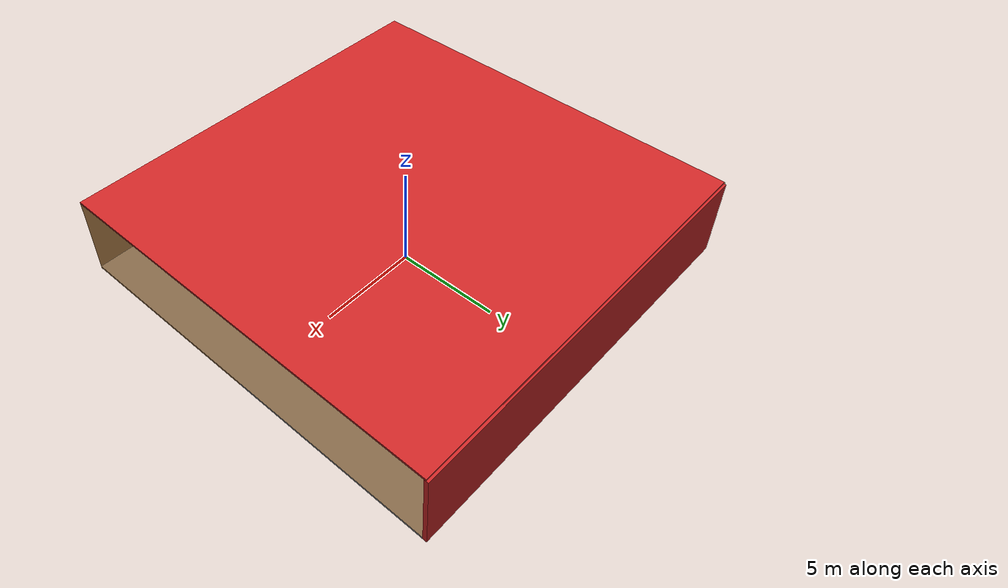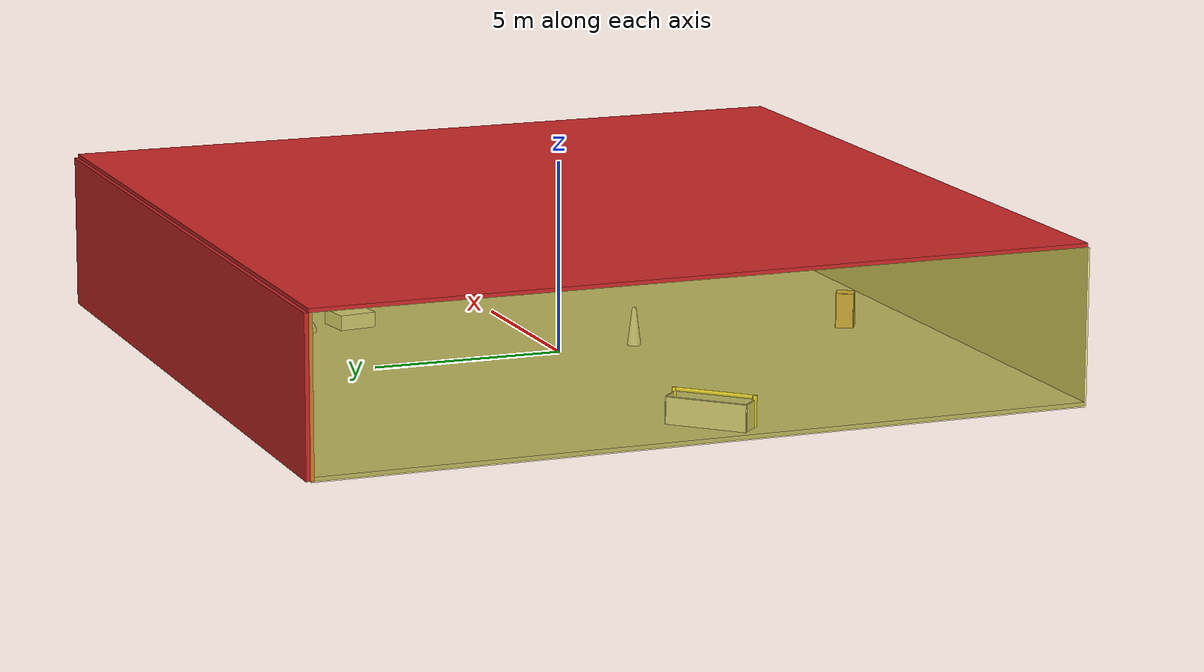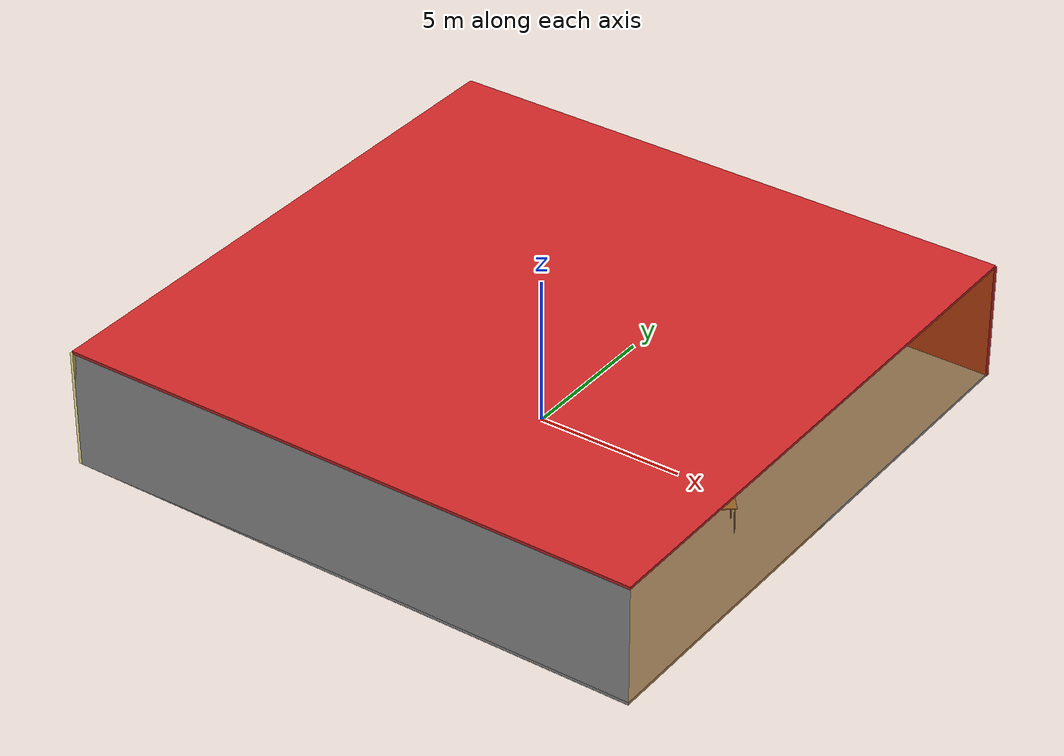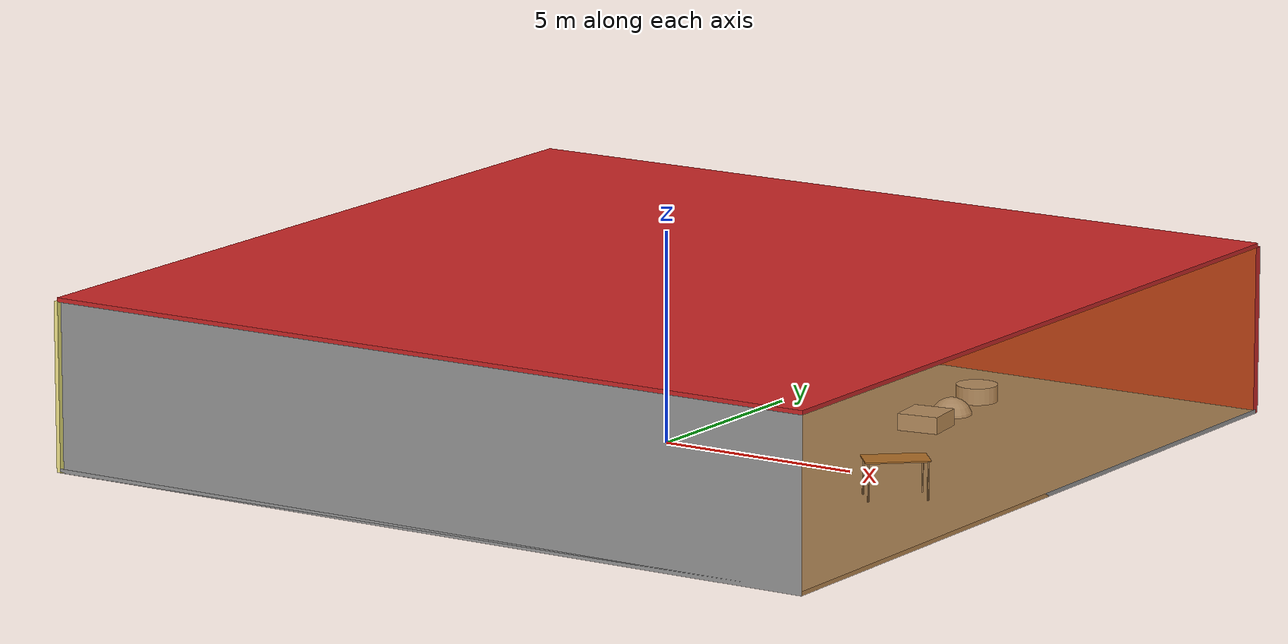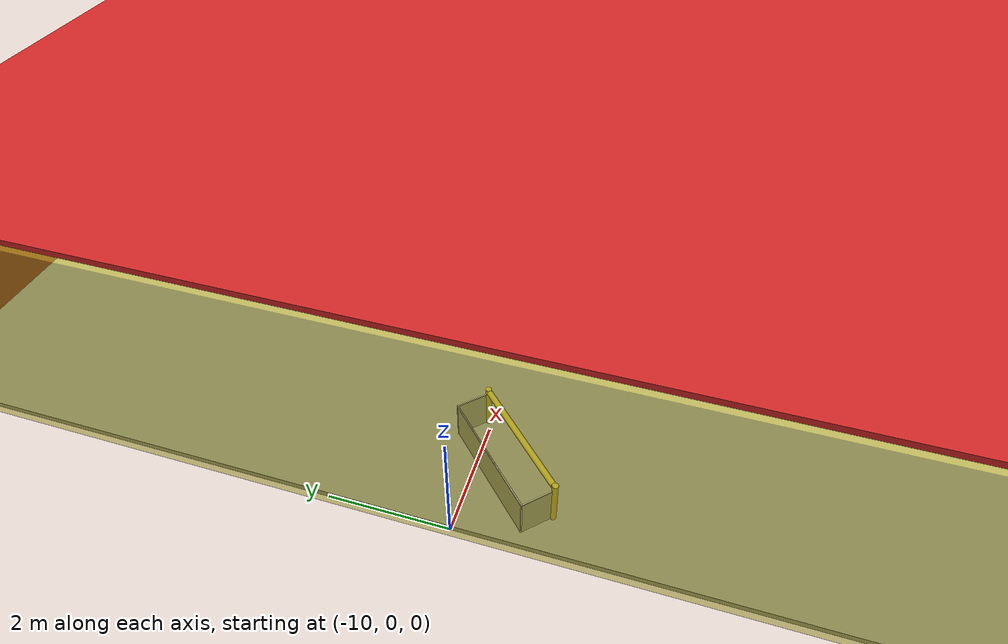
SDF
<sdf version="1.4">
 <world name="default">
  <physics type="ode">
   <max_step_size>0.001</max_step_size>
   <real_time_factor>1</real_time_factor>
   <real_time_update_rate>1000</real_time_update_rate>
   <gravity>0 0 -9.8</gravity>
  </physics>
  <scene><ambient>0.4 0.4 0.4 1</ambient><background>0.7 0.7 0.7 1</background><shadows>1</shadows></scene>
  <model name="Surrounding">
   <static>1</static>
   <link name="Ceiling">
    <collision name="Ceiling_Collision"><geometry><box><size>20 20 0.1</size></box></geometry></collision>
    <visual name="Ceiling_Visual">
     <geometry><box><size>20 20 0.1</size></box></geometry>
     <material>
      <script><uri>file://media/materials/scripts/gazebo.material</uri><name>Gazebo/Red</name></script>
     </material>
    </visual>
    <pose>0 0 4.05 0 0 0</pose>
   </link>
   <link name="Wall_South">
    <collision name="Wall_South_Collision">
     <geometry><box><size>20 0 4</size></box></geometry>
     <pose>0 0 2 0 -0 0</pose>
    </collision>
    <visual name="Wall_South_Visual">
     <pose>0 0 2 0 -0 0</pose>
     <geometry><box><size>20 0 4</size></box></geometry>
     <material>
      <script><uri>file://media/materials/scripts/gazebo.material</uri><name>Gazebo/GreyGradientSky</name></script>
     </material>
    </visual>
    <velocity_decay><linear>0</linear><angular>0</angular></velocity_decay>
    <pose>0 -10 0 0 -0 0</pose>
   </link>
   <link name="Wall_East">
    <collision name="Wall_21_Collision">
     <geometry><box><size>20 0 4</size></box></geometry>
     <pose>0 0 2 0 -0 0</pose>
    </collision>
    <visual name="Wall_21_Visual">
     <pose>0 0 2 0 -0 0</pose>
     <geometry><box><size>20 0 4</size></box></geometry>
     <material>
      <script>
       <uri>file://media/materials/scripts/gazebo.material</uri>
       <name>Gazebo/OrangeTransparent</name>
      </script>
     </material>
    </visual>
    <velocity_decay><linear>0</linear><angular>0</angular></velocity_decay>
    <pose>10 0 0 0 -0 1.5708</pose>
   </link>
   <link name="Wall_North">
    <collision name="Wall_22_Collision">
     <geometry><box><size>20 0.2 4</size></box></geometry>
     <pose>0 0 2 0 -0 0</pose>
    </collision>
    <visual name="Wall_22_Visual">
     <pose>0 0 2 0 -0 0</pose>
     <geometry><box><size>20 0.2 4</size></box></geometry>
     <material>
      <script><uri>file://media/materials/scripts/gazebo.material</uri><name>Gazebo/RedBright</name></script>
     </material>
    </visual>
    <velocity_decay><linear>0</linear><angular>0</angular></velocity_decay>
    <pose>0 10 0 0 -0 0</pose>
   </link>
   <link name="Wall_West">
    <collision name="Wall_23_Collision">
     <geometry><box><size>20 0.2 4</size></box></geometry>
     <pose>0 0 2 0 -0 0</pose>
    </collision>
    <visual name="Wall_23_Visual">
     <pose>0 0 2 0 -0 0</pose>
     <geometry><box><size>20 0.2 4</size></box></geometry>
     <material>
      <script>
       <uri>file://media/materials/scripts/gazebo.material</uri>
       <name>Gazebo/YellowTransparent</name>
      </script>
     </material>
    </visual>
    <velocity_decay><linear>0</linear><angular>0</angular></velocity_decay>
    <pose>-10 0 0 0 0 -1.5708</pose>
   </link>
   <link name="Ground_link">
    <collision name="collision">
     <pose>0 0 .05 0 -0 0</pose>
     <geometry><box><size>20 20 0.1</size></box></geometry>
    </collision>
    <visual name="visual">
     <pose>0 0 .05 0 -0 0</pose>
     <geometry><box><size>20 20 0.1</size></box></geometry>
     <material>
      <script><uri>file://media/materials/scripts/gazebo.material</uri><name>Gazebo/Grey</name></script>
     </material>
    </visual>
   </link>
   <static>1</static>
  </model>
  <spherical_coordinates>
   <surface_model>EARTH_WGS84</surface_model>
   <latitude_deg>0</latitude_deg>
   <longitude_deg>0</longitude_deg>
   <elevation>0</elevation>
   <heading_deg>0</heading_deg>
  </spherical_coordinates>
  <light name="lightball_0" type="diffuse">
   <diffuse>0.8 0.8 0.8 1</diffuse>
   <specular>0.2 0.2 0.2 1</specular>
   <attenuation>
    <range>100</range>
    <constant>0.7</constant>
    <linear>0.01</linear>
    <quadratic>0.001</quadratic>
   </attenuation>
   <direction>-0.5 0.1 -0.9</direction>
   <pose>4.9649492443 -3.41593438991 2.19482304352 0 0 0</pose>
  </light>
  <light name="lightball_1" type="diffuse">
   <diffuse>0.8 0.8 0.8 1</diffuse>
   <specular>0.2 0.2 0.2 1</specular>
   <attenuation>
    <range>100</range>
    <constant>0.7</constant>
    <linear>0.01</linear>
    <quadratic>0.001</quadratic>
   </attenuation>
   <direction>-0.5 0.1 -0.9</direction>
   <pose>0.768860135866 -8.76758481983 2.4471063981 0 0 0</pose>
  </light>
  <light name="lightball_2" type="diffuse">
   <diffuse>0.8 0.8 0.8 1</diffuse>
   <specular>0.2 0.2 0.2 1</specular>
   <attenuation>
    <range>100</range>
    <constant>0.7</constant>
    <linear>0.01</linear>
    <quadratic>0.001</quadratic>
   </attenuation>
   <direction>-0.5 0.1 -0.9</direction>
   <pose>8.70361859452 1.40769445055 0.649979139622 0 0 0</pose>
  </light>
  <light name="lightball_3" type="diffuse">
   <diffuse>0.8 0.8 0.8 1</diffuse>
   <specular>0.2 0.2 0.2 1</specular>
   <attenuation>
    <range>100</range>
    <constant>0.7</constant>
    <linear>0.01</linear>
    <quadratic>0.001</quadratic>
   </attenuation>
   <direction>-0.5 0.1 -0.9</direction>
   <pose>-0.399067641842 0.966923640802 2.23997671221 0 0 0</pose>
  </light>
  <include>
   <uri>model://robocup_3Dsim_goal</uri>
   <pose>-8.65411128694 -0.691317660133 0 0 0 2.35572362191</pose>
  </include>
  <include><uri>model://cabinet</uri><pose>-0.333311489065 -7.95841981049 0 0 0 2.64076163243</pose></include>
  <include>
   <uri>model://construction_cone</uri>
   <pose>-0.318106303343 -1.96360118758 0 0 0 0.226537026179</pose>
  </include>
  <include>
   <uri>model://textured_shapes</uri>
   <pose>4.26349414688 5.68011820229 0 0 0 0.136687363048</pose>
  </include>
  <include><uri>model://table</uri><pose>7.34194171634 -1.83299693185 0 0 0 0.712949710504</pose></include>
 </world>
</sdf>

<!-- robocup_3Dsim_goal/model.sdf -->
<sdf version="1.5">
  <model name="robocup_3d_goal">
    <static>true</static>
    <link name="left_post">
      <pose>0 1.05 0.45 0 0 0</pose>
      <collision name="collision">
        <geometry>
          <cylinder>
            <radius>0.05</radius>
            <length>0.9</length>
          </cylinder>
        </geometry>
      </collision>
      <visual name="visual">
        <geometry>
          <cylinder>
            <radius>0.05</radius>
            <length>0.9</length>
          </cylinder>
        </geometry>
        <material>
          <script>
            <uri>file://media/materials/scripts/gazebo.material</uri>
            <name>Gazebo/ZincYellow</name>
          </script>
        </material>
      </visual>
    </link>
    <link name="left_support_horiz_lower">
      <pose>0.30 1.05 0.01 0 0 0</pose>
      <collision name="collision">
        <geometry>
          <box>
            <size>0.50 0.02 0.02</size>
          </box>
        </geometry>
      </collision>
      <visual name="visual">
        <geometry>
          <box>
            <size>0.50 0.02 0.02</size>
          </box>
        </geometry>
        <material>
          <script>
            <uri>file://media/materials/scripts/gazebo.material</uri>
            <name>Gazebo/White</name>
          </script>
        </material>
      </visual>
    </link>
    <link name="left_support_horiz_upper">
      <pose>0.30 1.05 0.79 0 0 0</pose>
      <collision name="collision">
        <geometry>
          <box>
            <size>0.50 0.02 0.02</size>
          </box>
        </geometry>
      </collision>
      <visual name="visual">
        <geometry>
          <box>
            <size>0.50 0.02 0.02</size>
          </box>
        </geometry>
        <material>
          <script>
            <uri>file://media/materials/scripts/gazebo.material</uri>
            <name>Gazebo/White</name>
          </script>
        </material>
      </visual>
    </link>
    <link name="left_support_vertical">
      <pose>0.56 1.05 0.4 0 1.5708 0</pose>
      <collision name="collision">
        <geometry>
          <box>
            <size>0.80 0.02 0.02</size>
          </box>
        </geometry>
      </collision>
      <visual name="visual">
        <geometry>
          <box>
            <size>0.80 0.02 0.02</size>
          </box>
        </geometry>
        <material>
          <script>
            <uri>file://media/materials/scripts/gazebo.material</uri>
            <name>Gazebo/White</name>
          </script>
        </material>
      </visual>
    </link>
    <link name="right_support_horiz_lower">
      <pose>0.30 -1.05 0.01 0 0 0</pose>
      <collision name="collision">
        <geometry>
          <box>
            <size>0.50 0.02 0.02</size>
          </box>
        </geometry>
      </collision>
      <visual name="visual">
        <geometry>
          <box>
            <size>0.50 0.02 0.02</size>
          </box>
        </geometry>
        <material>
          <script>
            <uri>file://media/materials/scripts/gazebo.material</uri>
            <name>Gazebo/White</name>
          </script>
        </material>
      </visual>
    </link>
    <link name="right_support_horiz_upper">
      <pose>0.30 -1.05 0.79 0 0 0</pose>
      <collision name="collision">
        <geometry>
          <box>
            <size>0.50 0.02 0.02</size>
          </box>
        </geometry>
      </collision>
      <visual name="visual">
        <geometry>
          <box>
            <size>0.50 0.02 0.02</size>
          </box>
        </geometry>
        <material>
          <script>
            <uri>file://media/materials/scripts/gazebo.material</uri>
            <name>Gazebo/White</name>
          </script>
        </material>
      </visual>
    </link>
    <link name="right_support_vertical">
      <pose>0.56 -1.05 0.4 0 1.5708 0</pose>
      <collision name="collision">
        <geometry>
          <box>
            <size>0.80 0.02 0.02</size>
          </box>
        </geometry>
      </collision>
      <visual name="visual">
        <geometry>
          <box>
            <size>0.80 0.02 0.02</size>
          </box>
        </geometry>
        <material>
          <script>
            <uri>file://media/materials/scripts/gazebo.material</uri>
            <name>Gazebo/White</name>
          </script>
        </material>
      </visual>
    </link>
    <link name="center_support_horiz_lower">
      <pose>0.56 0 0.01 0 1.5708 0</pose>
      <collision name="collision">
        <geometry>
          <box>
            <size>0.02 2.08 0.02</size>
          </box>
        </geometry>
      </collision>
      <visual name="visual">
        <geometry>
          <box>
            <size>0.02 2.08 0.02</size>
          </box>
        </geometry>
        <material>
          <script>
            <uri>file://media/materials/scripts/gazebo.material</uri>
            <name>Gazebo/White</name>
          </script>
        </material>
      </visual>
    </link>
    <link name="center_support_horiz_upper">
      <pose>0.56 0 0.79 0 1.5708 0</pose>
      <collision name="collision">
        <geometry>
          <box>
            <size>0.02 2.08 0.02</size>
          </box>
        </geometry>
      </collision>
      <visual name="visual">
        <geometry>
          <box>
            <size>0.02 2.08 0.02</size>
          </box>
        </geometry>
        <material>
          <script>
            <uri>file://media/materials/scripts/gazebo.material</uri>
            <name>Gazebo/White</name>
          </script>
        </material>
      </visual>
    </link>
    <link name="right_post">
      <pose>0 -1.05 0.45 0 0 0</pose>
      <collision name="collision">
        <geometry>
          <cylinder>
            <radius>0.05</radius>
            <length>0.9</length>
          </cylinder>
        </geometry>
      </collision>
      <visual name="visual">
        <geometry>
          <cylinder>
            <radius>0.05</radius>
            <length>0.9</length>
          </cylinder>
        </geometry>
        <material>
          <script>
            <uri>file://media/materials/scripts/gazebo.material</uri>
            <name>Gazebo/ZincYellow</name>
          </script>
        </material>
      </visual>
    </link>
    <link name="crossbar">
      <pose>0 0 0.85 1.57 1.57 0</pose>
      <collision name="collision">
        <geometry>
          <cylinder>
            <radius>0.05</radius>
            <length>2.0</length>
          </cylinder>
        </geometry>
      </collision>
      <visual name="visual">
        <geometry>
          <cylinder>
            <radius>0.05</radius>
            <length>2.0</length>
          </cylinder>
        </geometry>
        <material>
          <script>
            <uri>file://media/materials/scripts/gazebo.material</uri>
            <name>Gazebo/ZincYellow</name>
          </script>
        </material>
      </visual>
    </link>
    <link name="center_net">
      <pose>0.56 0 0.40 0 0 0</pose>
      <collision name="collision">
        <geometry>
          <box>
            <size>0.01 2.1 0.80</size>
          </box>
        </geometry>
      </collision>
      <visual name="visual">
        <geometry>
          <box>
            <size>0.01 2.1 0.80</size>
          </box>
        </geometry>
        <material>
          <script>
            <uri>model://../model_source/models/robocup09_spl_field/materials/scripts/</uri>
            <uri>model://../model_source/models/robocup09_spl_field/materials/textures/</uri>
            <name>RoboCup/Net</name>
          </script>
        </material>
      </visual>
    </link>
    <link name="left_net">
      <pose>0.30 1.05 0.40 0 0 0</pose>
      <collision name="collision">
        <geometry>
          <box>
            <size>0.50 0.01 0.76</size>
          </box>
        </geometry>
      </collision>
      <visual name="visual">
        <geometry>
          <box>
            <size>0.50 0.01 0.76</size>
          </box>
        </geometry>
        <material>
          <script>
            <uri>model://../model_source/models/robocup09_spl_field/materials/scripts/</uri>
            <uri>model://../model_source/models/robocup09_spl_field/materials/textures/</uri>
            <name>RoboCup/Net</name>
          </script>
        </material>
      </visual>
    </link>
    <link name="right_net">
      <pose>0.30 -1.05 0.40 0 0 0</pose>
      <collision name="collision">
        <geometry>
          <box>
            <size>0.50 0.01 0.76</size>
          </box>
        </geometry>
      </collision>
      <visual name="visual">
        <geometry>
          <box>
            <size>0.50 0.01 0.76</size>
          </box>
        </geometry>
        <material>
          <script>
            <uri>model://../model_source/models/robocup09_spl_field/materials/scripts/</uri>
            <uri>model://../model_source/models/robocup09_spl_field/materials/textures/</uri>
            <name>RoboCup/Net</name>
          </script>
        </material>
      </visual>
    </link>
  </model>
</sdf>

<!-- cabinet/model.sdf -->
<sdf version="1.5">
  <model name="cabinet">
    <static>true</static>
    <link name="cabinet_bottom_plate">
      <inertial>
        <pose>0 0 -1 0 0 0</pose>
        <inertia>
          <ixx>2.050000</ixx>
          <ixy>0</ixy>
          <ixz>0</ixz>
          <iyy>2.050000</iyy>
          <iyz>0</iyz>
          <izz>2.050000</izz>
        </inertia>
        <mass>25.000000</mass>
      </inertial>
      <collision name="cabinet_bottom_plate_geom">
        <pose>0 0 0.010000 0 0 0</pose>
        <geometry>
          <box>
            <size>0.450000 0.450000 0.020000</size>
          </box>
        </geometry>
      </collision>
      <visual name="cabinet_bottom_plate_geom_visual">
        <pose>0 0 0.010000 0 0 0</pose>
        <geometry>
          <box>
            <size>0.450000 0.450000 0.020000</size>
          </box>
        </geometry>
        <material>
          <script>
            <uri>model://media/materials/scripts/gazebo.material</uri>
            <name>Gazebo/Wood</name>
          </script>
        </material>
      </visual>
      <collision name="cabinet_bottom_plate_geom_cabinet_back_plate">
        <pose>0.235000 0 0.510000 0 0 0</pose>
        <geometry>
          <box>
            <size>0.020000 0.450000 1.020000</size>
          </box>
        </geometry>
      </collision>
      <visual name="cabinet_bottom_plate_geom_cabinet_back_plate_visual">
        <pose>0.235000 0 0.510000 0 0 0</pose>
        <geometry>
          <box>
            <size>0.020000 0.450000 1.020000</size>
          </box>
        </geometry>
        <material>
          <script>
            <uri>model://media/materials/scripts/gazebo.material</uri>
            <name>Gazebo/Wood</name>
          </script>
        </material>
      </visual>
      <collision name="cabinet_bottom_plate_geom_cabinet_left_plate">
        <pose>0 0.235000 0.510000 0 0 0</pose>
        <geometry>
          <box>
            <size>0.450000 0.020000 1.020000</size>
          </box>
        </geometry>
      </collision>
      <visual name="cabinet_bottom_plate_geom_cabinet_left_plate_visual">
        <pose>0 0.235000 0.510000 0 0 0</pose>
        <geometry>
          <box>
            <size>0.450000 0.020000 1.020000</size>
          </box>
        </geometry>
        <material>
          <script>
            <uri>model://media/materials/scripts/gazebo.material</uri>
            <name>Gazebo/Wood</name>
          </script>
        </material>
      </visual>
      <collision name="cabinet_bottom_plate_geom_cabinet_middle_plate">
        <pose>0 0 0.510000 0 0 0</pose>
        <geometry>
          <box>
            <size>0.450000 0.450000 0.020000</size>
          </box>
        </geometry>
      </collision>
      <visual name="cabinet_bottom_plate_geom_cabinet_middle_plate_visual">
        <pose>0 0 0.510000 0 0 0</pose>
        <geometry>
          <box>
            <size>0.450000 0.450000 0.020000</size>
          </box>
        </geometry>
        <material>
          <script>
            <uri>model://media/materials/scripts/gazebo.material</uri>
            <name>Gazebo/Wood</name>
          </script>
        </material>
      </visual>
      <collision name="cabinet_bottom_plate_geom_cabinet_right_plate">
        <pose>0 -0.235000 0.510000 0 0 0</pose>
        <geometry>
          <box>
            <size>0.450000 0.020000 1.020000</size>
          </box>
        </geometry>
      </collision>
      <visual name="cabinet_bottom_plate_geom_cabinet_right_plate_visual">
        <pose>0 -0.235000 0.510000 0 0 0</pose>
        <geometry>
          <box>
            <size>0.450000 0.020000 1.020000</size>
          </box>
        </geometry>
        <material>
          <script>
            <uri>model://media/materials/scripts/gazebo.material</uri>
            <name>Gazebo/Wood</name>
          </script>
        </material>
      </visual>
      <collision name="cabinet_bottom_plate_geom_cabinet_top_plate">
        <pose>0 0 1.010000 0 0 0</pose>
        <geometry>
          <box>
            <size>0.450000 0.450000 0.020000</size>
          </box>
        </geometry>
      </collision>
      <visual name="cabinet_bottom_plate_geom_cabinet_top_plate_visual">
        <pose>0 0 1.010000 0 0 0</pose>
        <geometry>
          <box>
            <size>0.450000 0.450000 0.020000</size>
          </box>
        </geometry>
        <material>
          <script>
            <uri>model://media/materials/scripts/gazebo.material</uri>
            <name>Gazebo/Wood</name>
          </script>
        </material>
      </visual>
    </link>
  </model>
</sdf>

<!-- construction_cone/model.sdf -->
<sdf version="1.5">
  <model name="Construction Cone">
    <link name="link">
      <collision name="collision">
        <geometry>
          <mesh>
            <scale>10 10 10</scale>
            <uri>file://isr-testbed/construction_cone/meshes/construction_cone.dae</uri>
          </mesh>
        </geometry>
      </collision>
      <visual name="visual">
        <geometry>
          <mesh>
            <scale>10 10 10</scale>
            <uri>file://isr-testbed/construction_cone/meshes/construction_cone.dae</uri>
          </mesh>
        </geometry>
      </visual>
    </link>
  </model>
</sdf>

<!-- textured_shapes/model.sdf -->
<sdf version="1.6">
  <model name="textured_shapes">
    <pose>0 0 0.5 0 0 0</pose>
    <link name="box">
      <pose>0 -1.5 0 0 0 0</pose>
      <collision name="collision">
        <geometry>
          <box>
            <size>1 1 1</size>
          </box>
        </geometry>
      </collision>
      <visual name="visual">
        <geometry>
          <box>
            <size>1 1 1</size>
          </box>
        </geometry>
        <material>
          <script>
            <uri>model://../model_source/models/textured_shapes/materials/scripts</uri>
            <uri>model://../model_source/models/textured_shapes/materials/textures</uri>
            <name>TexturedShape/Squares</name>
          </script>
        </material>
      </visual>
    </link>
    <link name="sphere">
      <collision name="collision">
        <geometry>
          <sphere>
            <radius>0.5</radius>
          </sphere>
        </geometry>
      </collision>
      <visual name="visual">
        <geometry>
          <sphere>
            <radius>0.5</radius>
          </sphere>
        </geometry>
        <material>
          <script>
            <uri>model://../model_source/models/textured_shapes/materials/scripts</uri>
            <uri>model://../model_source/models/textured_shapes/materials/textures</uri>
            <name>TexturedShape/Squares</name>
          </script>
        </material>
      </visual>
    </link>
    <link name="cylinder">
      <pose>0 1.5 0 0 0 0</pose>
      <collision name="collision">
        <geometry>
          <cylinder>
            <radius>0.5</radius>
            <length>1</length>
          </cylinder>
        </geometry>
      </collision>
      <visual name="visual">
        <geometry>
          <cylinder>
            <radius>0.5</radius>
            <length>1</length>
          </cylinder>
        </geometry>
        <material>
          <script>
            <uri>model://../model_source/models/textured_shapes/materials/scripts</uri>
            <uri>model://../model_source/models/textured_shapes/materials/textures</uri>
            <name>TexturedShape/Squares</name>
          </script>
        </material>
      </visual>
    </link>
  </model>
</sdf>

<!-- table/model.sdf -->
<sdf version="1.5">
  <model name="table">
    <static>true</static>
    <link name="link">
      <collision name="surface">
        <pose>0 0 1.0 0 0 0</pose>
        <geometry>
          <box>
            <size>1.5 0.8 0.03</size>
          </box>
        </geometry>
        <surface>
          <friction>
            <ode>
              <mu>0.6</mu>
              <mu2>0.6</mu2>
            </ode>
          </friction>
        </surface>
      </collision>
      <visual name="visual1">
        <pose>0 0 1.0 0 0 0</pose>
        <geometry>
          <box>
            <size>1.5 0.8 0.03</size>
          </box>
        </geometry>
        <material>
          <script>
            <uri>model://media/materials/scripts/gazebo.material</uri>
            <name>Gazebo/Wood</name>
          </script>
        </material>
      </visual>
      <collision name="front_left_leg">
        <pose>0.68 0.38 0.5 0 0 0</pose>
        <geometry>
          <cylinder>
            <radius>0.02</radius>
            <length>1.0</length>
          </cylinder>
        </geometry>
      </collision>
      <visual name="front_left_leg">
        <pose>0.68 0.38 0.5 0 0 0</pose>
        <geometry>
          <cylinder>
            <radius>0.02</radius>
            <length>1.0</length>
          </cylinder>
        </geometry>
        <material>
          <script>
            <uri>model://media/materials/scripts/gazebo.material</uri>
            <name>Gazebo/Grey</name>
          </script>
        </material>
      </visual>
      <collision name="front_right_leg">
        <pose>0.68 -0.38 0.5 0 0 0</pose>
        <geometry>
          <cylinder>
            <radius>0.02</radius>
            <length>1.0</length>
          </cylinder>
        </geometry>
      </collision>
      <visual name="front_right_leg">
        <pose>0.68 -0.38 0.5 0 0 0</pose>
        <geometry>
          <cylinder>
            <radius>0.02</radius>
            <length>1.0</length>
          </cylinder>
        </geometry>
        <material>
          <script>
            <uri>model://media/materials/scripts/gazebo.material</uri>
            <name>Gazebo/Grey</name>
          </script>
        </material>
      </visual>
      <collision name="back_right_leg">
        <pose>-0.68 -0.38 0.5 0 0 0</pose>
        <geometry>
          <cylinder>
            <radius>0.02</radius>
            <length>1.0</length>
          </cylinder>
        </geometry>
      </collision>
      <visual name="back_right_leg">
        <pose>-0.68 -0.38 0.5 0 0 0</pose>
        <geometry>
          <cylinder>
            <radius>0.02</radius>
            <length>1.0</length>
          </cylinder>
        </geometry>
        <material>
          <script>
            <uri>model://media/materials/scripts/gazebo.material</uri>
            <name>Gazebo/Grey</name>
          </script>
        </material>
      </visual>
      <collision name="back_left_leg">
        <pose>-0.68 0.38 0.5 0 0 0</pose>
        <geometry>
          <cylinder>
            <radius>0.02</radius>
            <length>1.0</length>
          </cylinder>
        </geometry>
      </collision>
      <visual name="back_left_leg">
        <pose>-0.68 0.38 0.5 0 0 0</pose>
        <geometry>
          <cylinder>
            <radius>0.02</radius>
            <length>1.0</length>
          </cylinder>
        </geometry>
        <material>
          <script>
            <uri>model://media/materials/scripts/gazebo.material</uri>
            <name>Gazebo/Grey</name>
          </script>
        </material>
      </visual>
    </link>
  </model>
</sdf>
